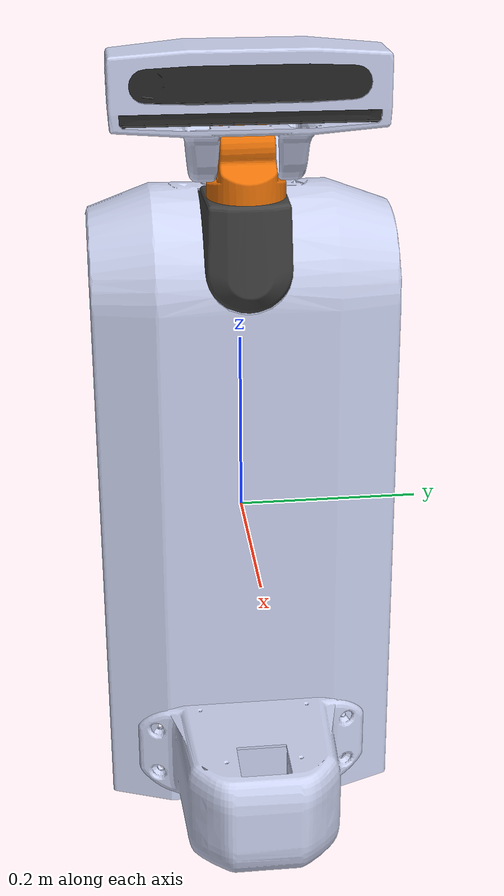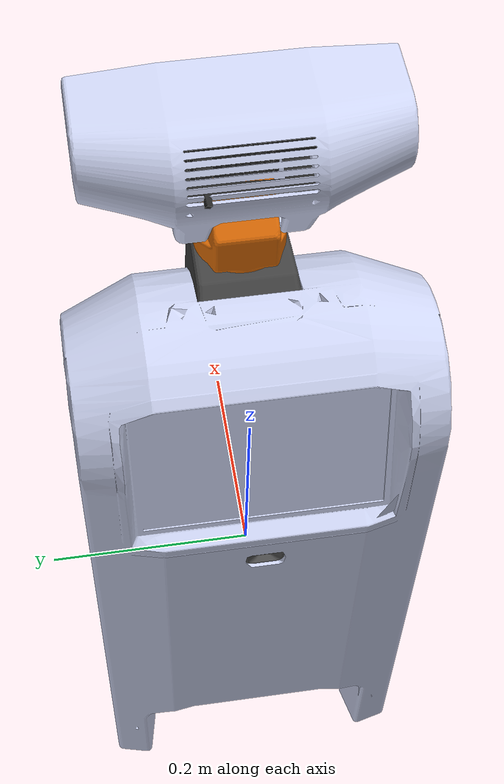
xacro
<?xml version="1.0"?>
<robot
  name="armadillo_torso_urdf" description="Armadillo robot torso">

  <link
    name="torso_link">
    <inertial>
      <origin
        xyz="0.0042842 2.8149E-05 0.03255"
        rpy="0 0 0" />
      <mass
        value="0.035511" />
      <inertia
        ixx="0.19579"
        ixy="2.4285E-05"
        ixz="-0.0045097"
        iyy="0.16807"
        iyz="-7.4938E-05"
        izz="0.072852" />
    </inertial>
    <visual>
      <origin
        xyz="0 0 0"
        rpy="0 0 0" />
      <geometry>
        <mesh
          filename="package://robotican_armadillo/description/meshes/torso_link.STL" />
      </geometry>
      <material
        name="">
        <color
          rgba="0.79216 0.81961 0.93333 1" />
      </material>
    </visual>
    <collision>
      <origin
        xyz="0 0 0"
        rpy="0 0 0" />
      <geometry>
        <mesh
          filename="package://robotican_armadillo/description/meshes/torso_link.STL" />
      </geometry>
    </collision>
  </link>
  <link
    name="rear_cam_link">
    <inertial>
      <origin
        xyz="-0.0060072 3.3793E-07 0.0005545"
        rpy="0 0 0" />
      <mass
        value="0.001942" />
      <inertia
        ixx="3.9185E-06"
        ixy="-2.0999E-11"
        ixz="-4.949E-08"
        iyy="2.1089E-06"
        iyz="-3.146E-10"
        izz="2.8316E-06" />
    </inertial>
    <visual>
      <origin
        xyz="0 0 0"
        rpy="0 0 0" />
      <geometry>
        <mesh
          filename="package://robotican_armadillo/description/meshes/rear_cam_link.STL" />
      </geometry>
      <material
        name="">
        <color
          rgba="0.29804 0.29804 0.29804 1" />
      </material>
    </visual>
    <collision>
      <origin
        xyz="0 0 0"
        rpy="0 0 0" />
      <geometry>
        <mesh
          filename="package://robotican_armadillo/description/meshes/rear_cam_link.STL" />
      </geometry>
    </collision>
  </link>
  <joint
    name="rear_cam_joint"
    type="fixed">
    <origin
      xyz="-0.09712 0 0.13354"
      rpy="0 0 3.1416" />
    <parent
      link="torso_link" />
    <child
      link="rear_cam_link" />
    <axis
      xyz="0 0 0" />
  </joint>
  <link
    name="arm_link">
    <inertial>
      <origin
        xyz="-0.0059684 -0.0015999 -0.0030639"
        rpy="0 0 0" />
      <mass
        value="0.0051572" />
      <inertia
        ixx="0.0028549"
        ixy="4.0212E-05"
        ixz="-9.0864E-06"
        iyy="0.0022217"
        iyz="-4.1689E-07"
        izz="0.0034029" />
    </inertial>
    <visual>
      <origin
        xyz="0 0 0"
        rpy="0 0 0" />
      <geometry>
        <mesh
          filename="package://robotican_armadillo/description/meshes/arm_link.STL" />
      </geometry>
      <material
        name="">
        <color
          rgba="0.79216 0.81961 0.93333 1" />
      </material>
    </visual>
    <collision>
      <origin
        xyz="0 0 0"
        rpy="0 0 0" />
      <geometry>
        <mesh
          filename="package://robotican_armadillo/description/meshes/arm_link.STL" />
      </geometry>
    </collision>
  </link>
  <joint
    name="arm_joint"
    type="fixed">
    <origin
      xyz="0.19338 0 -0.25204"
      rpy="0 0 0" />
    <parent
      link="torso_link" />
    <child
      link="arm_link" />
    <axis
      xyz="0 0 0" />
  </joint>
  <link
    name="head_link">
    <inertial>
      <origin
        xyz="-0.027036 -2.3647E-06 0.069774"
        rpy="0 0 0" />
      <mass
        value="0.059686" />
      <inertia
        ixx="0.00016122"
        ixy="-3.2007E-09"
        ixz="-2.9825E-05"
        iyy="0.0001219"
        iyz="1.8349E-09"
        izz="0.0001574" />
    </inertial>
    <visual>
      <origin
        xyz="0 0 0"
        rpy="0 0 0" />
      <geometry>
        <mesh
          filename="package://robotican_armadillo/description/meshes/head_link.STL" />
      </geometry>
      <material
        name="">
        <color
          rgba="0.25098 0.25098 0.25098 1" />
      </material>
    </visual>
    <collision>
      <origin
        xyz="0 0 0"
        rpy="0 0 0" />
      <geometry>
        <mesh
          filename="package://robotican_armadillo/description/meshes/head_link.STL" />
      </geometry>
    </collision>
  </link>
  <joint
    name="head_joint"
    type="fixed">
    <origin
      xyz="0.11288 0 0.26399"
      rpy="0 0 0" />
    <parent
      link="torso_link" />
    <child
      link="head_link" />
    <axis
      xyz="0 0 0" />
  </joint>
  <link
    name="head_pan_link">
    <inertial>
      <origin
        xyz="-0.0035721 -0.00092628 0.033004"
        rpy="0 0 0" />
      <mass
        value="0.03653" />
      <inertia
        ixx="3.6365E-05"
        ixy="-2.125E-07"
        ixz="-4.0004E-07"
        iyy="3.8545E-05"
        iyz="-4.6643E-07"
        izz="4.1521E-05" />
    </inertial>
    <visual>
      <origin
        xyz="0 0 0"
        rpy="0 0 0" />
      <geometry>
        <mesh
          filename="package://robotican_armadillo/description/meshes/head_pan_link.STL" />
      </geometry>
      <material
        name="">
        <color
          rgba="0.90588 0.44314 0.031373 1" />
      </material>
    </visual>
    <collision>
      <origin
        xyz="0 0 0"
        rpy="0 0 0" />
      <geometry>
        <mesh
          filename="package://robotican_armadillo/description/meshes/head_pan_link.STL" />
      </geometry>
    </collision>
  </link>
  <joint
    name="head_pan_joint"
    type="revolute">
    <origin
      xyz="-0.035 0 0.111"
      rpy="0 0 0" />
    <parent
      link="head_link" />
    <child
      link="head_pan_link" />
    <axis
      xyz="0 0 1" />
    <limit
      upper="${M_PI/3}"
	  lower="${-M_PI/3}"
      effort="3.1"
      velocity="7.016223585" />
  </joint>
  <link
    name="head_tilt_link">
    <inertial>
      <origin
        xyz="0.013688 0.00038551 0.064171"
        rpy="0 0 0" />
      <mass
        value="1.0232" />
      <inertia
        ixx="0.0056403"
        ixy="-2.0419E-05"
        ixz="1.476E-05"
        iyy="0.0012267"
        iyz="1.5926E-07"
        izz="0.0057848" />
    </inertial>
    <visual>
      <origin
        xyz="0 0 0"
        rpy="0 0 0" />
      <geometry>
        <mesh
          filename="package://robotican_armadillo/description/meshes/head_tilt_link.STL" />
      </geometry>
      <material
        name="">
        <color
          rgba="0.79216 0.81961 0.93333 1" />
      </material>
    </visual>
    <collision>
      <origin
        xyz="0 0 0"
        rpy="0 0 0" />
      <geometry>
        <mesh
          filename="package://robotican_armadillo/description/meshes/head_tilt_link.STL" />
      </geometry>
    </collision>
  </link>
  <joint
    name="head_tilt_joint"
    type="revolute">
    <origin
      xyz="0 0 0.051"
      rpy="0 0 0" />
    <parent
      link="head_pan_link" />
    <child
      link="head_tilt_link" />
    <axis
      xyz="0 1 0" />
    <limit
    upper="${M_PI/3}"
	  lower="${-M_PI/6}"
      effort="3.1"
      velocity="7.016223585" />
  </joint>
  <link
    name="kinect2_link">
    <inertial>

      <origin

        xyz="-0.034825 0.00047843 -0.0036931"

        rpy="0 0 0" />

      <mass

        value="0.82085" />

      <inertia

        ixx="0.0039702"

        ixy="-2.1546E-05"

        ixz="-2.6946E-05"

        iyy="0.00059235"

        iyz="-1.2194E-06"

        izz="0.0041195" />

    </inertial>
    <visual>
      <origin
        xyz="0 0 0"

        rpy="0 0 0" />
      <geometry>
        <mesh
          filename="package://robotican_armadillo/description/meshes/kinect2_link.STL" />
      </geometry>
      <material
        name="">
        <color
          rgba="0.15 0.15 0.15 1" />
      </material>
    </visual>
    <collision>
      <origin
        xyz="0 0 0"
        rpy="0 0 0" />
      <geometry>
        <mesh
          filename="package://robotican_armadillo/description/meshes/kinect2_link.STL" />
      </geometry>
    </collision>
  </link>
  <joint
    name="kinect2_joint"
    type="fixed">
    <origin
      xyz="0.0518 0 0.07225"
      rpy="0 0 0" />
    <parent
      link="head_tilt_link" />
    <child
      link="kinect2_link" />
    <axis
      xyz="0 0 0" />
  </joint>
  <joint name="kinect2_rgb_joint" type="fixed">
      <origin xyz="0 -0.0935 0" rpy="0 0 0"/>
      <parent link="kinect2_link"/>
      <child link="kinect2_rgb_frame" />
    </joint>

    <link name="kinect2_rgb_frame">
      <inertial>
	<mass value="0.001" />
	<origin xyz="0 0 0" />
	<inertia ixx="0.0001" ixy="0.0" ixz="0.0"
	  iyy="0.0001" iyz="0.0"
	  izz="0.0001" />
	</inertial>
      </link>
      <joint name="kinect2_rgb_optical_joint" type="fixed">
	<origin xyz="0 0 0" rpy="${-M_PI/2} 0 ${-M_PI/2}" />
	<parent link="kinect2_rgb_frame" />
	<child link="kinect2_rgb_optical_frame" />
      </joint>

      <link name="kinect2_rgb_optical_frame">
	<inertial>
	  <mass value="0.001" />
	  <origin xyz="0 0 0" />
	  <inertia ixx="0.0001" ixy="0.0" ixz="0.0"
	    iyy="0.0001" iyz="0.0"
	    izz="0.0001" />
	  </inertial>
	</link>

	<joint name="kinect2_depth_joint" type="fixed">
	  <origin xyz="0 0 0" rpy="0 0 0" />
	  <parent link="kinect2_rgb_frame" />
	  <child link="kinect2_depth_frame" />
	</joint>

	<link name="kinect2_depth_frame">
	  <inertial>
	    <mass value="0.001" />
	    <origin xyz="0 0 0" />
	    <inertia ixx="0.0001" ixy="0.0" ixz="0.0"
	      iyy="0.0001" iyz="0.0"
	      izz="0.0001" />
	    </inertial>
	  </link>

	  <joint name="kinect2_depth_optical_joint" type="fixed">
	    <origin xyz="0 0 0" rpy="${-M_PI/2} 0 ${-M_PI/2}" />
	    <parent link="kinect2_depth_frame" />
	    <child link="kinect2_depth_optical_frame" />
	  </joint>
	  <link name="kinect2_depth_optical_frame">
	    <inertial>
	      <mass value="0.001" />
	      <origin xyz="0 0 0" />
	      <inertia ixx="0.0001" ixy="0.0" ixz="0.0"
		iyy="0.0001" iyz="0.0"
		izz="0.0001" />
	      </inertial>
	    </link>
</robot>
<!--       xyz="0.0518 -0.095 0.072265" -->
